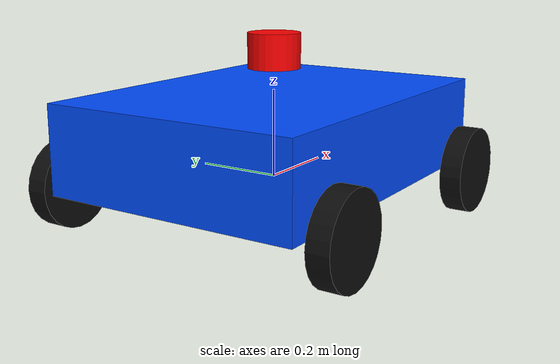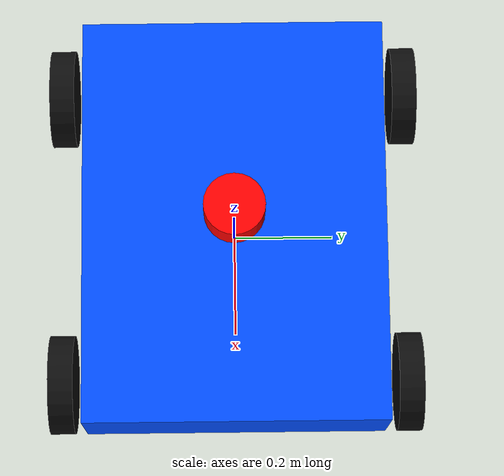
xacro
<?xml version="1.0"?>

<robot xmlns:xacro="http://www.ros.org/wiki/xacro"
       name="mini_amr">

  <!-- Root Frame -->

  <link name="base_footprint"/>

  <!-- Main Body -->

  <link name="base_link">

    <visual>
      <geometry>
        <box size="0.8 0.6 0.2"/>
      </geometry>

      <origin xyz="0 0 0.1"
              rpy="0 0 0"/>

      <material name="blue">
        <color rgba="0 0.3 1 1"/>
      </material>

    </visual>

  </link>

  <joint name="base_footprint_joint" type="fixed">
    <parent link="base_footprint"/>
    <child link="base_link"/>
    <origin xyz="0 0 0" rpy="0 0 0"/>
  </joint>

  <!-- Wheels -->

  <xacro:macro name="wheel" params="name x y">

    <link name="${name}">

      <visual>

        <geometry>
          <cylinder radius="0.1" length="0.05"/>
        </geometry>

        <origin xyz="0 0 0"
                rpy="1.5708 0 0"/>

        <material name="black">
          <color rgba="0.05 0.05 0.05 1"/>
        </material>

      </visual>

    </link>

    <joint name="${name}_joint" type="continuous">

      <parent link="base_link"/>
      <child link="${name}"/>

      <origin xyz="${x} ${y} 0"
              rpy="0 0 0"/>

      <axis xyz="0 1 0"/>

    </joint>

  </xacro:macro>

  <!-- Front Wheels -->

  <xacro:wheel
    name="front_left_wheel"
    x="0.3"
    y="0.35"/>

  <xacro:wheel
    name="front_right_wheel"
    x="0.3"
    y="-0.35"/>

  <!-- Rear Wheels -->

  <xacro:wheel
    name="rear_left_wheel"
    x="-0.3"
    y="0.35"/>

  <xacro:wheel
    name="rear_right_wheel"
    x="-0.3"
    y="-0.35"/>

  <!-- LiDAR Sensor -->

  <link name="laser_link">

    <visual>

      <geometry>
        <cylinder radius="0.06" length="0.08"/>
      </geometry>

      <origin xyz="0 0 0.04"
              rpy="0 0 0"/>

      <material name="red">
        <color rgba="1 0 0 1"/>
      </material>

    </visual>

  </link>

  <!-- LiDAR Fixed Joint -->

  <joint name="laser_joint" type="fixed">

    <parent link="base_link"/>

    <child link="laser_link"/>

    <origin xyz="0 0 0.25"
            rpy="0 0 0"/>

  </joint>

</robot>
